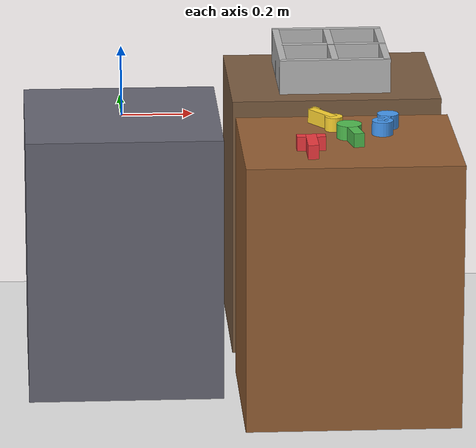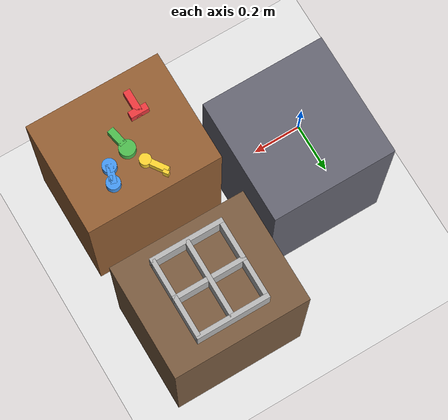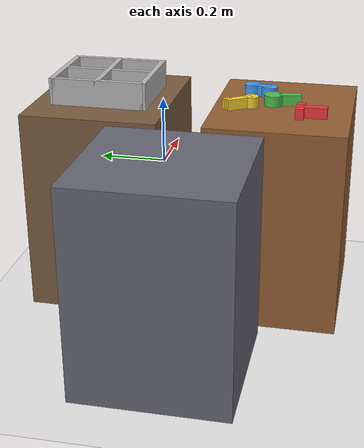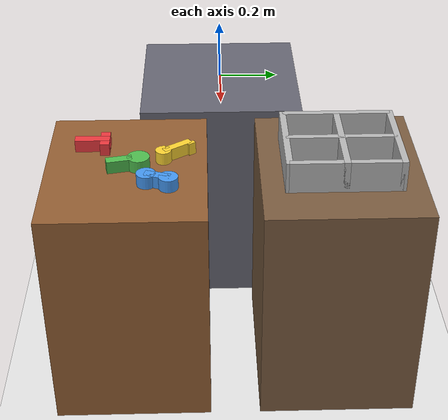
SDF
<?xml version="1.0" ?>
<sdf version="1.9">
  <world name="vision_sort_demo">
    <gravity>0 0 -9.8</gravity>
    <plugin name="gz::sim::systems::Physics" filename="gz-sim-physics-system"/>
    <plugin name="gz::sim::systems::UserCommands" filename="gz-sim-user-commands-system"/>
    <plugin name="gz::sim::systems::SceneBroadcaster" filename="gz-sim-scene-broadcaster-system"/>
    <plugin name="gz::sim::systems::Sensors" filename="gz-sim-sensors-system">
      <render_engine>ogre2</render_engine>
    </plugin>

    <scene>
      <ambient>0.6 0.6 0.6 1</ambient>
      <background>0.92 0.94 0.97 1</background>
    </scene>

    <light name="sun" type="directional">
      <cast_shadows>true</cast_shadows>
      <pose>0 0 10 0 0 0</pose>
      <diffuse>0.8 0.8 0.8 1</diffuse>
      <specular>0.2 0.2 0.2 1</specular>
      <attenuation>
        <range>1000</range>
        <constant>0.9</constant>
        <linear>0.01</linear>
        <quadratic>0.001</quadratic>
      </attenuation>
      <direction>-0.5 0.1 -0.9</direction>
    </light>

    <model name="ground_plane">
      <static>true</static>
      <pose>0 0 -0.76 0 0 0</pose>
      <link name="link">
        <collision name="collision">
          <geometry>
            <plane>
              <normal>0 0 1</normal>
              <size>20 20</size>
            </plane>
          </geometry>
        </collision>
        <visual name="visual">
          <geometry>
            <plane>
              <normal>0 0 1</normal>
              <size>20 20</size>
            </plane>
          </geometry>
          <material>
            <ambient>0.85 0.85 0.85 1</ambient>
            <diffuse>0.9 0.9 0.9 1</diffuse>
          </material>
        </visual>
      </link>
    </model>

    <model name="robot_table">
      <static>true</static>
      <pose>0.00 0.00 -0.38 0 0 0</pose>
      <link name="link">
        <collision name="collision">
          <geometry>
            <box><size>0.55 0.55 0.76</size></box>
          </geometry>
        </collision>
        <visual name="visual">
          <geometry>
            <box><size>0.55 0.55 0.76</size></box>
          </geometry>
          <material>
            <ambient>0.30 0.30 0.33 1</ambient>
            <diffuse>0.40 0.40 0.45 1</diffuse>
          </material>
        </visual>
      </link>
    </model>

    <model name="source_table">
      <static>true</static>
      <pose>0.62 -0.30 -0.38 0 0 0</pose>
      <link name="link">
        <collision name="collision">
          <geometry>
            <box><size>0.60 0.50 0.76</size></box>
          </geometry>
        </collision>
        <visual name="visual">
          <geometry>
            <box><size>0.60 0.50 0.76</size></box>
          </geometry>
          <material>
            <ambient>0.48 0.31 0.17 1</ambient>
            <diffuse>0.58 0.37 0.20 1</diffuse>
          </material>
        </visual>
      </link>
    </model>

    <model name="target_table">
      <static>true</static>
      <pose>0.62 0.36 -0.38 0 0 0</pose>
      <link name="link">
        <collision name="collision">
          <geometry>
            <box><size>0.60 0.50 0.76</size></box>
          </geometry>
        </collision>
        <visual name="visual">
          <geometry>
            <box><size>0.60 0.50 0.76</size></box>
          </geometry>
          <material>
            <ambient>0.38 0.29 0.20 1</ambient>
            <diffuse>0.48 0.36 0.25 1</diffuse>
          </material>
        </visual>
      </link>
    </model>

    <model name="target_sector_front_wall">
      <static>true</static>
      <pose>0.62 0.19 0.05 0 0 0</pose>
      <link name="link">
        <collision name="collision"><geometry><box><size>0.32 0.02 0.10</size></box></geometry></collision>
        <visual name="visual"><geometry><box><size>0.32 0.02 0.10</size></box></geometry></visual>
      </link>
    </model>

    <model name="target_sector_back_wall">
      <static>true</static>
      <pose>0.62 0.53 0.05 0 0 0</pose>
      <link name="link">
        <collision name="collision"><geometry><box><size>0.32 0.02 0.10</size></box></geometry></collision>
        <visual name="visual"><geometry><box><size>0.32 0.02 0.10</size></box></geometry></visual>
      </link>
    </model>

    <model name="target_sector_left_wall">
      <static>true</static>
      <pose>0.47 0.36 0.05 0 0 0</pose>
      <link name="link">
        <collision name="collision"><geometry><box><size>0.02 0.34 0.10</size></box></geometry></collision>
        <visual name="visual"><geometry><box><size>0.02 0.34 0.10</size></box></geometry></visual>
      </link>
    </model>

    <model name="target_sector_right_wall">
      <static>true</static>
      <pose>0.77 0.36 0.05 0 0 0</pose>
      <link name="link">
        <collision name="collision"><geometry><box><size>0.02 0.34 0.10</size></box></geometry></collision>
        <visual name="visual"><geometry><box><size>0.02 0.34 0.10</size></box></geometry></visual>
      </link>
    </model>

    <model name="target_sector_midline_x">
      <static>true</static>
      <pose>0.62 0.36 0.05 0 0 0</pose>
      <link name="link">
        <collision name="collision"><geometry><box><size>0.02 0.34 0.10</size></box></geometry></collision>
        <visual name="visual"><geometry><box><size>0.02 0.34 0.10</size></box></geometry></visual>
      </link>
    </model>

    <model name="target_sector_midline_y">
      <static>true</static>
      <pose>0.62 0.36 0.05 0 0 0</pose>
      <link name="link">
        <collision name="collision"><geometry><box><size>0.32 0.02 0.10</size></box></geometry></collision>
        <visual name="visual"><geometry><box><size>0.32 0.02 0.10</size></box></geometry></visual>
      </link>
    </model>

    <model name="camera_rig">
      <static>true</static>
      <pose>0.62 -0.30 1.05 0 1.57079632679 0</pose>
      <link name="camera_link">
        <sensor name="rgbd_camera" type="rgbd_camera">
          <always_on>true</always_on>
          <update_rate>10</update_rate>
          <visualize>true</visualize>
          <topic>/rgbd_camera</topic>
          <camera>
            <camera_info_topic>/rgbd_camera/camera_info</camera_info_topic>
            <optical_frame_id>camera_optical_frame</optical_frame_id>
            <horizontal_fov>1.10</horizontal_fov>
            <image>
              <width>1280</width>
              <height>720</height>
              <format>R8G8B8</format>
            </image>
            <clip>
              <near>0.05</near>
              <far>3.0</far>
            </clip>
            <depth_camera>
              <clip>
                <near>0.05</near>
                <far>3.0</far>
              </clip>
            </depth_camera>
          </camera>
        </sensor>
      </link>
    </model>

    <model name="hammer">
      <static>false</static>
      <pose>0.51 -0.41 0.02 0 0 0</pose>
      <link name="link">
        <inertial><mass>0.08</mass></inertial>
        <collision name="handle_collision">
          <pose>0.0 0.0 0 0 0 0</pose>
          <geometry><box><size>0.03 0.11 0.04</size></box></geometry>
        </collision>
        <collision name="head_collision">
          <pose>0.0 0.04 0 0 0 0</pose>
          <geometry><box><size>0.08 0.03 0.04</size></box></geometry>
        </collision>
        <visual name="handle_visual">
          <pose>0.0 0.0 0 0 0 0</pose>
          <geometry><box><size>0.03 0.11 0.04</size></box></geometry>
          <material><ambient>0.84 0.16 0.18 1</ambient><diffuse>0.93 0.22 0.24 1</diffuse></material>
        </visual>
        <visual name="head_visual">
          <pose>0.0 0.04 0 0 0 0</pose>
          <geometry><box><size>0.08 0.03 0.04</size></box></geometry>
          <material><ambient>0.84 0.16 0.18 1</ambient><diffuse>0.93 0.22 0.24 1</diffuse></material>
        </visual>
      </link>
    </model>

    <model name="racket">
      <static>false</static>
      <pose>0.63 -0.29 0.02 0 0 0.2</pose>
      <link name="link">
        <inertial><mass>0.08</mass></inertial>
        <collision name="handle_collision">
          <pose>0.0 -0.03 0 0 0 0</pose>
          <geometry><box><size>0.03 0.08 0.04</size></box></geometry>
        </collision>
        <collision name="head_collision">
          <pose>0.0 0.03 0 0 0 0</pose>
          <geometry><cylinder><radius>0.035</radius><length>0.04</length></cylinder></geometry>
        </collision>
        <visual name="handle_visual">
          <pose>0.0 -0.03 0 0 0 0</pose>
          <geometry><box><size>0.03 0.08 0.04</size></box></geometry>
          <material><ambient>0.22 0.62 0.24 1</ambient><diffuse>0.31 0.74 0.31 1</diffuse></material>
        </visual>
        <visual name="head_visual">
          <pose>0.0 0.03 0 0 0 0</pose>
          <geometry><cylinder><radius>0.035</radius><length>0.04</length></cylinder></geometry>
          <material><ambient>0.22 0.62 0.24 1</ambient><diffuse>0.31 0.74 0.31 1</diffuse></material>
        </visual>
      </link>
    </model>

    <model name="dumbbell">
      <static>false</static>
      <pose>0.73 -0.20 0.02 0 0 -0.3</pose>
      <link name="link">
        <inertial><mass>0.08</mass></inertial>
        <collision name="bar_collision">
          <geometry><box><size>0.03 0.08 0.04</size></box></geometry>
        </collision>
        <collision name="left_weight_collision">
          <pose>0.0 -0.035 0 0 0 0</pose>
          <geometry><cylinder><radius>0.03</radius><length>0.04</length></cylinder></geometry>
        </collision>
        <collision name="right_weight_collision">
          <pose>0.0 0.035 0 0 0 0</pose>
          <geometry><cylinder><radius>0.03</radius><length>0.04</length></cylinder></geometry>
        </collision>
        <visual name="bar_visual">
          <geometry><box><size>0.03 0.08 0.04</size></box></geometry>
          <material><ambient>0.20 0.48 0.85 1</ambient><diffuse>0.27 0.60 0.95 1</diffuse></material>
        </visual>
        <visual name="left_weight_visual">
          <pose>0.0 -0.035 0 0 0 0</pose>
          <geometry><cylinder><radius>0.03</radius><length>0.04</length></cylinder></geometry>
          <material><ambient>0.20 0.48 0.85 1</ambient><diffuse>0.27 0.60 0.95 1</diffuse></material>
        </visual>
        <visual name="right_weight_visual">
          <pose>0.0 0.035 0 0 0 0</pose>
          <geometry><cylinder><radius>0.03</radius><length>0.04</length></cylinder></geometry>
          <material><ambient>0.20 0.48 0.85 1</ambient><diffuse>0.27 0.60 0.95 1</diffuse></material>
        </visual>
      </link>
    </model>

    <model name="key">
      <static>false</static>
      <pose>0.57 -0.16 0.02 0 0 0.6</pose>
      <link name="link">
        <inertial><mass>0.05</mass></inertial>
        <collision name="shaft_collision">
          <pose>0.0 0.02 0 0 0 0</pose>
          <geometry><box><size>0.025 0.10 0.04</size></box></geometry>
        </collision>
        <collision name="head_collision">
          <pose>0.0 -0.03 0 0 0 0</pose>
          <geometry><cylinder><radius>0.025</radius><length>0.04</length></cylinder></geometry>
        </collision>
        <collision name="teeth_collision">
          <pose>0.012 0.065 0 0 0 0</pose>
          <geometry><box><size>0.015 0.025 0.04</size></box></geometry>
        </collision>
        <visual name="shaft_visual">
          <pose>0.0 0.02 0 0 0 0</pose>
          <geometry><box><size>0.025 0.10 0.04</size></box></geometry>
          <material><ambient>0.96 0.75 0.12 1</ambient><diffuse>0.99 0.83 0.19 1</diffuse></material>
        </visual>
        <visual name="head_visual">
          <pose>0.0 -0.03 0 0 0 0</pose>
          <geometry><cylinder><radius>0.025</radius><length>0.04</length></cylinder></geometry>
          <material><ambient>0.96 0.75 0.12 1</ambient><diffuse>0.99 0.83 0.19 1</diffuse></material>
        </visual>
        <visual name="teeth_visual">
          <pose>0.012 0.065 0 0 0 0</pose>
          <geometry><box><size>0.015 0.025 0.04</size></box></geometry>
          <material><ambient>0.96 0.75 0.12 1</ambient><diffuse>0.99 0.83 0.19 1</diffuse></material>
        </visual>
      </link>
    </model>
  </world>
</sdf>
